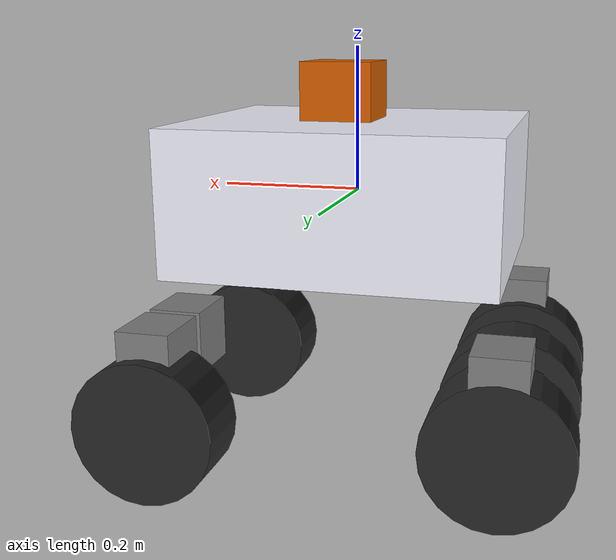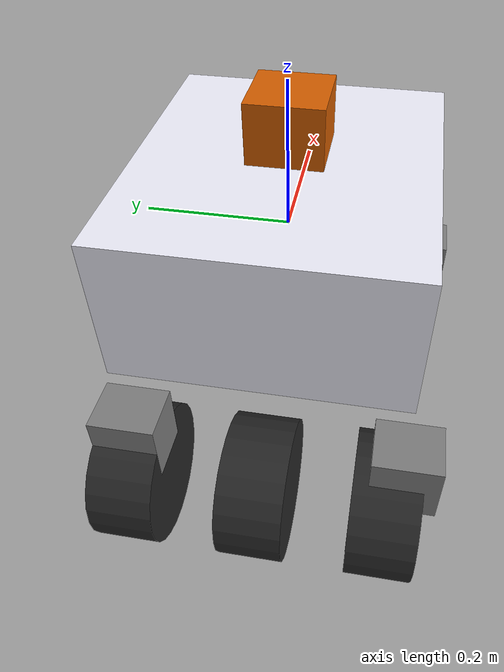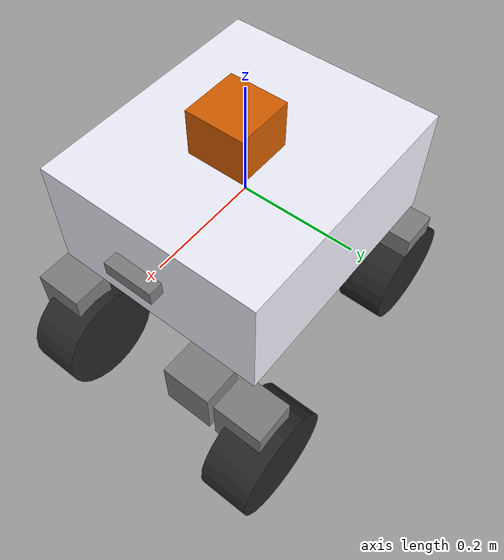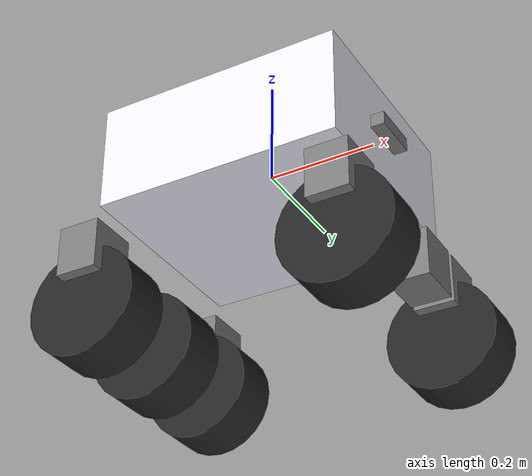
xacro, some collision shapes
<?xml version="1.0"?>
<robot name="pf1" xmlns:xacro="http://ros.org/wiki/xacro">

    <!-- define color-->
  <material name="base_link">
    <color rgba="0.95 0.95 1.0 1.0"/>
  </material>
  <material name="lidar">
    <color rgba="0.0 0.0 0.0 1.0"/>
  </material>
  <material name="camera_aluminum">
    <color rgba="0.5 0.5 0.5 1.0"/>
  </material>
  <material name="frame">
    <color rgba="0.5 0.5 0.5 1.0"/>
  </material>
  <material name="gear">
    <color rgba="0.0 0.4 1.0 1.0"/>
  </material>
  <material name="motor">
    <color rgba="0.3 0.3 0.3 1.0"/>
  </material>
  <material name="wheel">
    <color rgba="0.15 0.15 0.15 1.0"/>
  </material>

    <!-- base_footprint-->

    <!-- base_link -->
  <link name="base_link">
    <inertial>
      <origin xyz="0 0 0" rpy="0 0 0"/>
      <mass value="10.0"/>
      <inertia ixx="1.0" ixy="0.0" ixz="0.0" iyy="1.0" iyz="0.0" izz="1.0"/>
    </inertial>
    <visual>
      <geometry>
        <box size="0.45 0.39 0.2"/>
      </geometry>
      <origin xyz="0 0 0" rpy="0 0 0"/>
      <material name="base_link"/>
    </visual>
    <collision>
      <geometry>
        <box size="0.45 0.39 0.2"/>
      </geometry>
      <origin xyz="0 0 0" rpy="0 0 0"/>
      <material name="base_link"/>
    </collision>
  </link>
  <gazebo reference="body_link">
    <material>Gazebo/White</material>
  </gazebo>

    <!-- imu_link -->
  <joint name="imu_link_to_base_link" type="fixed">
    <parent link="base_link"/>
    <child link="imu_link"/>
    <origin xyz="-0 0 0" rpy="0 0 0"/>
  </joint>
  <link name="imu_link">
    <visual>
      <origin xyz="0 0 0.0" rpy="0 0 0"/>
      <geometry>
        <cylinder length="0.01" radius="0.005"/>
      </geometry>
      <material name="lidar"/>
    </visual>
    <collision>
      <origin xyz="0 0 0.0" rpy="0 0 0"/>
      <geometry>
        <cylinder length="0.01" radius="0.005"/>
      </geometry>
      <material name="lidar"/>
    </collision>
  </link>
  <gazebo reference="imu_link">
    <material>Gazebo/Blue</material>
    <gravity>true</gravity>
    <sensor name="imu_sensor" type="imu">
      <always_on>true</always_on>
      <update_rate>100</update_rate>
      <visualize>true</visualize>
      <topic>data</topic>
      <plugin filename="libgazebo_ros_imu_sensor.so" name="imu_plugin">
        <topicName>imu/data</topicName>
        <bodyName>imu_link</bodyName>
        <updateRateHZ>10.0</updateRateHZ>
        <gaussianNoise>0.0</gaussianNoise>
        <xyzOffset>0 0 0</xyzOffset>
        <rpyOffset>0 0 0</rpyOffset>
        <frameName>imu_link</frameName>
      </plugin>
      <pose>0 0 0 0 0 0</pose>
    </sensor>
  </gazebo>

    <!-- base_sensor -->
  <joint name="base_link_to_base_sensor" type="fixed">
    <parent link="base_link"/>
    <child link="base_sensor"/>
    <origin xyz="-0 0 0" rpy="0 0 0"/>
  </joint>
  <link name="base_sensor">
    <visual>
      <origin xyz="0 0 0.0" rpy="0 0 0"/>
      <geometry>
        <cylinder length="0.01" radius="0.005"/>
      </geometry>
      <material name="lidar"/>
    </visual>
    <collision>
      <origin xyz="0 0 0.0" rpy="0 0 0"/>
      <geometry>
        <cylinder length="0.01" radius="0.005"/>
      </geometry>
      <material name="lidar"/>
    </collision>
  </link>
  <gazebo reference="base_link_to_base_sensor">
    <material>Gazebo/Grey</material>
  </gazebo>

    <!-- realsense -->

  <!-- set property -->
   <xacro:property name="M_PI" value="3.1415926535897931" />
   <xacro:property name="d435_cam_width" value="0.090"/>
   <xacro:property name="d435_cam_height" value="0.025"/>
   <xacro:property name="d435_cam_depth" value="0.02505"/>
   <xacro:property name="d435_cam_mount_from_center_offset" value="0.0149"/>
   <xacro:property name="d435_cam_depth_px" value="${d435_cam_mount_from_center_offset}"/>
   <xacro:property name="d435_cam_depth_py" value="0.0175"/>
   <xacro:property name="d435_cam_depth_pz" value="${d435_cam_height/2}"/>
   <xacro:property name="deg_to_rad" value="0.01745329251994329577" />

  <!-- camera body, with origin at bottom screw mount -->

    <joint name="camera_joint" type="fixed">
      <origin xyz="0.225 0 0" rpy="0 0 0" />
      <parent link="base_sensor" />
      <child link="camera_bottom_screw_frame" />
    </joint>

    <link name="camera_bottom_screw_frame"/>

    <joint name="camera_link_joint" type="fixed">
      <origin xyz="0.0125 0 0" rpy="0 0 0"/>
      <parent link="camera_bottom_screw_frame"/>
      <child link="camera_link" />
    </joint>

    <link name="camera_link">
      <visual>
        <origin xyz="0 ${-d435_cam_depth_py} 0" rpy="${M_PI/2} 0 ${M_PI/2}"/>
        <geometry>
          <box size="${d435_cam_width} ${d435_cam_height} ${d435_cam_depth}" />
        </geometry>
        <material name="camera_aluminum"/>
      </visual>
      <collision>
        <origin xyz="0 ${-d435_cam_depth_py} 0" rpy="0 0 0"/>
        <geometry>
          <box size="${d435_cam_depth} ${d435_cam_width} ${d435_cam_height}"/>
        </geometry>
      </collision>
      <inertial>
        <mass value="0.564" />
        <origin xyz="0 0 0" />
        <inertia ixx="0.003881243" ixy="0.0" ixz="0.0" iyy="0.000498940" iyz="0.0" izz="0.003879257" />
      </inertial>
    </link>
    <gazebo reference="camera_link">
      <material>Gazebo/Black</material>
      <self_collide>0</self_collide>
      <enable_wind>0</enable_wind>
      <kinematic>0</kinematic>
      <gravity>1</gravity>
      <mu2>1</mu2>
      <fdir1>0 0 0</fdir1>
      <kp>1e+13</kp>
      <kd>1</kd>
      <sensor name="cameracolor" type="camera">
        <camera name="camera">
          <horizontal_fov>${69.4*deg_to_rad}</horizontal_fov>
          <image>
            <width>640</width>
            <height>480</height>
            <format>RGB_INT8</format>
          </image>
          <clip>
            <near>0.1</near>
            <far>100</far>
          </clip>
          <noise>
            <type>gaussian</type>
            <mean>0.0</mean>
            <stddev>0.007</stddev>
          </noise>
        </camera>
        <always_on>1</always_on>
        <update_rate>30</update_rate>
        <visualize>1</visualize>
      </sensor>

      <sensor name="cameraired1" type="camera">
        <camera name="camera">
          <horizontal_fov>${85.2*deg_to_rad}</horizontal_fov>
          <image>
            <width>1280</width>
            <height>720</height>
            <format>L_INT8</format>
          </image>
          <clip>
            <near>0.1</near>
            <far>100</far>
          </clip>
          <noise>
            <type>gaussian</type>
            <mean>0.0</mean>
            <stddev>0.05</stddev>
          </noise>
        </camera>
        <always_on>1</always_on>
        <update_rate>90</update_rate>
        <visualize>0</visualize>
      </sensor>

      <sensor name="cameraired2" type="camera">
        <camera name="camera">
          <horizontal_fov>${85.2*deg_to_rad}</horizontal_fov>
          <image>
            <width>1280</width>
            <height>720</height>
            <format>L_INT8</format>
          </image>
          <clip>
            <near>0.1</near>
            <far>100</far>
          </clip>
          <noise>
            <type>gaussian</type>
            <mean>0.0</mean>
            <stddev>0.05</stddev>
          </noise>
        </camera>
        <always_on>1</always_on>
        <update_rate>90</update_rate>
        <visualize>0</visualize>
      </sensor>

      <sensor name="cameradepth" type="depth">
        <camera name="camera">
          <horizontal_fov>${85.2*deg_to_rad}</horizontal_fov>
          <image>
            <width>1280</width>
            <height>720</height>
          </image>
          <clip>
            <near>0.1</near>
            <far>1000</far>
          </clip>
          <noise>
            <type>gaussian</type>
            <mean>0.0</mean>
            <stddev>0.100</stddev>
          </noise>
        </camera>
        <always_on>1</always_on>
        <update_rate>90</update_rate>
        <visualize>0</visualize>
      </sensor>
    </gazebo>

        <!-- camera depth joints and links -->
    <joint name="camera_depth_joint" type="fixed">
      <origin xyz="0 0 0" rpy="0 0 0"/>
      <parent link="camera_link"/>
      <child link="camera_depth_frame" />
    </joint>

    <link name="camera_depth_frame"/>

    <joint name="camera_depth_optical_joint" type="fixed">
      <origin xyz="0 0 0" rpy="${-M_PI/2} 0 ${-M_PI/2}" />
      <parent link="camera_depth_frame" />
      <child link="camera_depth_optical_frame" />
    </joint>

    <link name="camera_depth_optical_frame"/>

    <!-- camera left IR joints and links -->
    <joint name="camera_left_ir_joint" type="fixed">
      <origin xyz="0 0 0" rpy="0 0 0" />
      <parent link="camera_depth_frame" />
      <child link="camera_left_ir_frame" />
    </joint>

    <link name="camera_left_ir_frame"/>

    <joint name="camera_left_ir_optical_joint" type="fixed">
      <origin xyz="0 0 0" rpy="${-M_PI/2} 0 ${-M_PI/2}" />
      <parent link="camera_left_ir_frame" />
      <child link="camera_left_ir_optical_frame" />
    </joint>

    <link name="camera_left_ir_optical_frame"/>

    <!-- camera right IR joints and links -->
    <joint name="camera_right_ir_joint" type="fixed">
      <origin xyz="0 -0.050 0" rpy="0 0 0" />
      <parent link="camera_depth_frame" />
      <child link="camera_right_ir_frame" />
    </joint>

    <link name="camera_right_ir_frame"/>

    <joint name="camera_right_ir_optical_joint" type="fixed">
      <origin xyz="0 0 0" rpy="${-M_PI/2} 0 ${-M_PI/2}" />
      <parent link="camera_right_ir_frame" />
      <child link="camera_right_ir_optical_frame" />
    </joint>

    <link name="camera_right_ir_optical_frame"/>

    <!-- camera color joints and links -->
    <joint name="camera_color_joint" type="fixed">
      <origin xyz="0 0.015 0" rpy="0 0 0" />
      <parent link="camera_depth_frame" />
      <child link="camera_color_frame" />
    </joint>

    <link name="camera_color_frame"/>

    <joint name="camera_color_optical_joint" type="fixed">
      <origin xyz="0 0 0" rpy="${-M_PI/2} 0 ${-M_PI/2}" />
      <parent link="camera_color_frame" />
      <child link="camera_color_optical_frame" />
    </joint>

    <link name="camera_color_optical_frame"/>

      <gazebo>
      <plugin name="camera" filename="librealsense_gazebo_plugin.so">
        <prefix>camera</prefix>
        <depthUpdateRate>30.0</depthUpdateRate>
        <colorUpdateRate>30.0</colorUpdateRate>
        <infraredUpdateRate>30.0</infraredUpdateRate>
        <depthTopicName>depth/image_raw</depthTopicName>
        <depthCameraInfoTopicName>depth/camera_info</depthCameraInfoTopicName>
        <colorTopicName>color/image_raw</colorTopicName>
        <colorCameraInfoTopicName>color/camera_info</colorCameraInfoTopicName>
        <infrared1TopicName>infra1/image_raw</infrared1TopicName>
        <infrared1CameraInfoTopicName>infra1/camera_info</infrared1CameraInfoTopicName>
        <infrared2TopicName>infra2/image_raw</infrared2TopicName>
        <infrared2CameraInfoTopicName>infra2/camera_info</infrared2CameraInfoTopicName>
        <colorOpticalframeName>camera_color_optical_frame</colorOpticalframeName>
        <depthOpticalframeName>camera_depth_optical_frame</depthOpticalframeName>
        <infrared1OpticalframeName>infrared1_optical_frame</infrared1OpticalframeName>
        <infrared2OpticalframeName>infrared2_optical_frame</infrared2OpticalframeName>
        <rangeMinDepth>0.2</rangeMinDepth>
        <rangeMaxDepth>400.0</rangeMaxDepth>
        <pointCloud>true</pointCloud>
        <pointCloudTopicName>depth/color/points</pointCloudTopicName>
        <pointCloudCutoff>0.25</pointCloudCutoff>
        <pointCloudCutoffMax>9.0</pointCloudCutoffMax>
      </plugin>
    </gazebo>

    <!--end of realsense setup-->

     <link name="hokuyo_sensor">
   <collision>
      <origin xyz="0 0 0" rpy="0 0 0"/>
      <geometry>
        <box size="0.1 0.1 0.1"/>
      </geometry>
    </collision>

    <visual>
      <origin xyz="0 0 0" rpy="0 0 0"/>
      <geometry>
        <mesh filename="package://rrbot_description/meshes/hokuyo.dae"/>
      </geometry>
    </visual>

    <inertial>
      <mass value="1e-5" />
      <origin xyz="0 0 0" rpy="0 0 0"/>
      <inertia ixx="1e-6" ixy="0" ixz="0" iyy="1e-6" iyz="0" izz="1e-6" />
    </inertial>
    </link>

    <joint name="hokuyo_joint" type="fixed">
      <parent link="base_link"/>
      <child  link="hokuyo_sensor"/>
      <origin xyz="0.02 0 0.13" rpy="0 0 0"/>
    </joint>

    <gazebo reference="hokuyo_sensor">
      <sensor type="ray" name="base_link_hokuyo_sensor">
        <pose>0 0 0 0 0 0</pose>

        <visualize>false</visualize>
        <update_rate>40</update_rate>
        <ray>
          <scan>
          <horizontal>
                <samples>400</samples>
                <resolution>1</resolution>

                <min_angle>${radians(-180)}</min_angle>
                <max_angle>${radians( 180)}</max_angle>

          </horizontal>

          </scan>
          <range>
            <min>0.10</min>
            <max>30.0</max>
            <resolution>0.01</resolution>
          </range>
          <noise>
            <type>gaussian</type>

            <stddev>0.01</stddev>
          </noise>
        </ray>
        <plugin name="gazebo_ros_lidar_controller" filename="libgazebo_ros_laser.so">
          <topicName>scan</topicName>
          <frameName>hokuyo_sensor</frameName>
        </plugin>
      </sensor>
    </gazebo>

    <!-- leg_fl -->

  <joint name="frame3_fl_to_gear_fl" type="revolute">
    <parent link="base_link"/>
    <child  link="frame3_fl"/>
    <axis xyz="0 0 1"/>
    <origin xyz="0.23 0.195 -0.205" rpy="0 0 0"/>
    <limit lower="-3.1415" upper="3.1415" effort="30" velocity="10"/>
    <dybamics damping="10000.0" friction="10000.0" />
  </joint>
  <transmission name="frame3_fl_to_gear_fl_trans">
    <type>transmission_interface/SimpleTransmission</type>
    <joint name="frame3_fl_to_gear_fl">
        <hardwareInterface>hardware_interface/PositionJointInterface</hardwareInterface>
    </joint>
    <actuator name="frame3_fl_to_gear_fl_motor">
      <hardwareInterface>hardware_interface/PositionJointInterface</hardwareInterface>
      <mechanicalReduction>1</mechanicalReduction>
    </actuator>
  </transmission>

  <link name="frame3_fl">
    <visual>
      <geometry>
        <box size="0.075 0.09 0.09"/>
      </geometry>
      <origin xyz="0 0 0" rpy="0 0 0"/>
      <material name="frame"/>
    </visual>
    <collision>
      <geometry>
        <box size="0.075 0.09 0.09"/>
      </geometry>
      <origin xyz="0 0 0" rpy="0 0 0"/>
      <material name="frame"/>
    </collision>
    <inertial>
      <origin xyz="0 0 0" rpy="0 0 0"/>
      <mass value="1.0"/>
      <inertia ixx="1.0" ixy="0.0" ixz="0.0" iyy="1.0" iyz="0.0" izz="1.0"/>
    </inertial>
  </link>
  <gazebo reference="frame3_fl">
    <material>Gazebo/Grey</material>
    <mu1 value="2500" />
    <mu2 value="2500" />
  </gazebo>

  <joint name="wheel_fl_to_motor_fl" type="continuous">
    <parent link="frame3_fl"/>
    <child  link="wheel_fl"/>
    <origin xyz="0 0.02 -0.09" rpy="0 0 0"/>
    <axis xyz="0 1 0"/>
    <limit effort="100" velocity="100"/>
    <dynamics damping="0.1" friction="0.0"/>
  </joint>
  <transmission name="wheel_fl_trans">
    <type>transmission_interface/SimpleTransmission</type>
    <joint name="wheel_fl_to_motor_fl">
        <hardwareInterface>hardware_interface/VelocityJointInterface</hardwareInterface>
    </joint>
    <actuator name="wheel_fl_motor">
      <hardwareInterface>hardware_interface/VelocityJointInterface</hardwareInterface>
      <mechanicalReduction>1</mechanicalReduction>
    </actuator>
  </transmission>

  <link name="wheel_fl">
    <visual>
      <geometry>
        <cylinder length="0.09" radius="0.1"/>
      </geometry>
      <origin xyz="0 0 0" rpy="1.57 0 0"/>
      <material name="wheel"/>
    </visual>
    <collision>
      <geometry>
        <cylinder length="0.09" radius="0.1"/>
      </geometry>
      <origin xyz="0 0 0" rpy="1.57 0 0"/>
      <material name="wheel"/>
    </collision>
    <inertial>
      <origin xyz="0 0 0" rpy="0 0 0"/>
      <mass value="1.0"/>
      <inertia ixx="1.0" ixy="0.0" ixz="0.0" iyy="1.0" iyz="0.0" izz="1.0"/>
    </inertial>
  </link>
  <gazebo reference="wheel_fl">
    <material>Gazebo/Black</material>
    <mu1 value="2.0" />
    <mu2 value="1.0" />
    <kp value="1e9" />
    <kd value="1e9" />
  </gazebo>

   <!-- virtual steer -->
  <joint name="front_steer_joint" type="revolute">
    <parent link="base_link"/>
    <child link="front_steer_link"/>
    <axis xyz="0 0 1"/>
    <origin xyz="0.23 0.093 -0.205" rpy="0 0 0"/>
    <limit lower="-3.1415" upper="3.1415" effort="30" velocity="10"/>
    <dybamics damping="10000.0" friction="10000.0" />
  </joint>
  <transmission name="front_steer_trans">
    <type>transmission_interface/SimpleTransmission</type>
    <joint name="front_steer_joint">
        <hardwareInterface>hardware_interface/PositionJointInterface</hardwareInterface>
    </joint>
    <actuator name="front_steer_joint_motor">
      <hardwareInterface>hardware_interface/PositionJointInterface</hardwareInterface>
      <hardwareInterface>EffortJointInterface</hardwareInterface>
      <mechanismReduction>1</mechanismReduction>
    </actuator>
  </transmission>
  <link name="front_steer_link">
    <visual>
      <geometry>
        <box size="0.075 0.09 0.09"/>
      </geometry>
      <origin xyz="0 0 0" rpy="0 0 0"/>
      <material name="frame"/>
    </visual>
    <collision>
      <geometry>
        <box size="0.075 0.09 0.09"/>
      </geometry>
      <origin xyz="0 0 0" rpy="0 0 0"/>
      <material name="frame"/>
    </collision>
    <inertial>
      <origin xyz="0 0 0" rpy="0 0 0"/>
      <mass value="1.0"/>
      <inertia ixx="1.0" ixy="0.0" ixz="0.0" iyy="1.0" iyz="0.0" izz="1.0"/>
    </inertial>
  </link>

    <gazebo reference="front_steer_joint">
      <provideFeedback>true</provideFeedback>
    </gazebo>

      <!-- leg_bl : mirror leg_fl to the y axis -->

  <joint name="frame3_bl_to_gear_bl" type="fixed">
    <parent link="base_link"/>
    <child  link="frame3_bl"/>
    <axis xyz="0 0 1"/>
    <origin xyz="-0.23 0.175 -0.205" rpy="0 0 0"/>
  </joint>

  <link name="frame3_bl">
    <visual>
      <geometry>
        <box size="0.075 0.09 0.09"/>
      </geometry>
      <origin xyz="0 0 0" rpy="0 0 0"/>
      <material name="frame"/>
    </visual>
    <collision>
      <geometry>
        <box size="0.075 0.09 0.09"/>
      </geometry>
      <origin xyz="0 0 0" rpy="0 0 0"/>
      <material name="frame"/>
    </collision>
    <inertial>
      <origin xyz="0 0 0" rpy="0 0 0"/>
      <mass value="1.0"/>
      <inertia ixx="1.0" ixy="0.0" ixz="0.0" iyy="1.0" iyz="0.0" izz="1.0"/>
    </inertial>
  </link>
  <gazebo reference="frame3_bl">
    <material>Gazebo/Grey</material>
    <mu1 value="2500" />
    <mu2 value="2500" />
  </gazebo>

  <joint name="wheel_bl_to_motor_bl" type="continuous">
    <parent link="base_link"/>
    <child  link="wheel_bl"/>
    <origin xyz="-0.23 0.175 -0.295" rpy="0 0 0"/>
    <axis xyz="0 1 0"/>
    <limit effort="100" velocity="100"/>
    <dynamics damping="0.1" friction="0.0"/>
  </joint>
  <transmission name="wheel_bl_trans">
    <type>transmission_interface/SimpleTransmission</type>
    <joint name="wheel_bl_to_motor_bl">
        <hardwareInterface>hardware_interface/VelocityJointInterface</hardwareInterface>
    </joint>
    <actuator name="wheel_bl_motor">
      <hardwareInterface>hardware_interface/VelocityJointInterface</hardwareInterface>
      <hardwareInterface>EffortJointInterface</hardwareInterface>
      <mechanismReduction>1</mechanismReduction>
    </actuator>
  </transmission>

  <link name="wheel_bl">
    <visual>
      <geometry>
        <cylinder length="0.09" radius="0.1"/>
      </geometry>
      <origin xyz="0 0 0" rpy="1.57 0 0"/>
      <material name="wheel"/>
    </visual>
    <collision>
      <geometry>
        <cylinder length="0.09" radius="0.1"/>
      </geometry>
      <origin xyz="0 0 0" rpy="1.57 0 0"/>
      <material name="wheel"/>
    </collision>
    <inertial>
      <origin xyz="0 0 0" rpy="0 0 0"/>
      <mass value="1.0"/>
      <inertia ixx="1.0" ixy="0.0" ixz="0.0" iyy="1.0" iyz="0.0" izz="1.0"/>
    </inertial>
  </link>
  <gazebo reference="wheel_bl">
    <material>Gazebo/Black</material>
    <mu1 value="1.0" />
    <mu2 value="1.0" />
    <kp value="1e9" />
    <kd value="1e9" />
  </gazebo>

    <!-- leg_fr -->

  <joint name="frame3_fr_to_gear_fr" type="revolute">
    <parent link="base_link"/>
    <child  link="frame3_fr"/>
    <axis xyz="0 0 1"/>
    <origin xyz="0.23 -0.195 -0.205" rpy="0 0 0"/>
    <limit lower="-3.1415" upper="3.1415" effort="30" velocity="10"/>
    <dybamics damping="10000.0" friction="10000.0" />
  </joint>
  <transmission name="frame3_fr_to_gear_fr_trans">
    <type>transmission_interface/SimpleTransmission</type>
    <joint name="frame3_fr_to_gear_fr">
        <hardwareInterface>hardware_interface/PositionJointInterface</hardwareInterface>
    </joint>
    <actuator name="frame3_fr_to_gear_fr_motor">
      <hardwareInterface>hardware_interface/PositionJointInterface</hardwareInterface>
      <mechanismReduction>1</mechanismReduction>
    </actuator>
  </transmission>

  <link name="frame3_fr">
    <visual>
      <geometry>
        <box size="0.075 0.09 0.09"/>
      </geometry>
      <origin xyz="0 0 0" rpy="0 0 0"/>
      <material name="frame"/>
    </visual>
    <collision>
      <geometry>
        <box size="0.075 0.09 0.09"/>
      </geometry>
      <origin xyz="0 0 0" rpy="0 0 0"/>
      <material name="frame"/>
    </collision>
    <inertial>
      <origin xyz="0 0 0" rpy="0 0 0"/>
      <mass value="1.0"/>
      <inertia ixx="1.0" ixy="0.0" ixz="0.0" iyy="1.0" iyz="0.0" izz="1.0"/>
    </inertial>
  </link>
  <gazebo reference="frame3_fr">
    <material>Gazebo/Grey</material>
    <mu1 value="2500" />
    <mu2 value="2500" />
  </gazebo>

  <joint name="wheel_fr_to_motor_fr" type="continuous">
    <parent link="frame3_fr"/>
    <child  link="wheel_fr"/>
    <origin xyz="0 0.02 -0.09" rpy="0 0 0"/>
    <axis xyz="0 1 0"/>
    <limit effort="100" velocity="100"/>
    <dynamics damping="0.1" friction="0.0"/>
  </joint>
  <transmission name="wheel_fr_trans">
    <type>transmission_interface/SimpleTransmission</type>
    <joint name="wheel_fr_to_motor_fr">
        <hardwareInterface>hardware_interface/VelocityJointInterface</hardwareInterface>
    </joint>
    <actuator name="wheel_fr_motor">
      <hardwareInterface>hardware_interface/VelocityJointInterface</hardwareInterface>
      <hardwareInterface>EffortJointInterface</hardwareInterface>
      <mechanismReduction>1</mechanismReduction>
    </actuator>
  </transmission>

  <link name="wheel_fr">
    <visual>
      <geometry>
        <cylinder length="0.09" radius="0.1"/>
      </geometry>
      <origin xyz="0 0 0" rpy="1.57 0 0"/>
      <material name="wheel"/>
    </visual>
    <collision>
      <geometry>
        <cylinder length="0.09" radius="0.1"/>
      </geometry>
      <origin xyz="0 0 0" rpy="1.57 0 0"/>
      <material name="wheel"/>
    </collision>
    <inertial>
      <origin xyz="0 0 0" rpy="0 0 0"/>
      <mass value="1.0"/>
      <inertia ixx="1.0" ixy="0.0" ixz="0.0" iyy="1.0" iyz="0.0" izz="1.0"/>
    </inertial>
  </link>
  <gazebo reference="wheel_fr">
    <material>Gazebo/Black</material>
    <mu1 value="1.0" />
    <mu2 value="1.0" />
    <kp value="1e9" />
    <kd value="1e9" />
  </gazebo>

    <!-- leg_br -->

  <joint name="frame3_br_to_gear_br" type="fixed">
    <parent link="base_link"/>
    <child  link="frame3_br"/>
    <axis xyz="0 0 1"/>
    <origin xyz="-0.23 -0.195 -0.205" rpy="0 0 0"/>
  </joint>

  <link name="frame3_br">
    <visual>
      <geometry>
        <box size="0.075 0.09 0.09"/>
      </geometry>
      <origin xyz="0 0 0" rpy="0 0 0"/>
      <material name="frame"/>
    </visual>
    <collision>
      <geometry>
        <box size="0.075 0.09 0.09"/>
      </geometry>
      <origin xyz="0 0 0" rpy="0 0 0"/>
      <material name="frame"/>
    </collision>
    <inertial>
      <origin xyz="0 0 0" rpy="0 0 0"/>
      <mass value="1.0"/>
      <inertia ixx="1.0" ixy="0.0" ixz="0.0" iyy="1.0" iyz="0.0" izz="1.0"/>
    </inertial>
  </link>
  <gazebo reference="frame3_br">
    <material>Gazebo/Green</material>
    <mu1 value="2500" />
    <mu2 value="2500" />
  </gazebo>

  <joint name="wheel_br_to_motor_br" type="continuous">
    <parent link="base_link"/>
    <child  link="wheel_br"/>
    <origin xyz="-0.23 -0.175 -0.295" rpy="0 0 0"/>
    <axis xyz="0 1 0"/>
    <limit effort="100" velocity="100"/>
    <dynamics damping="0.1" friction="0.0"/>
  </joint>
  <transmission name="wheel_br_trans">
    <type>transmission_interface/SimpleTransmission</type>
    <joint name="wheel_br_to_motor_br">
        <hardwareInterface>hardware_interface/VelocityJointInterface</hardwareInterface>
    </joint>
    <actuator name="wheel_br_motor">
      <hardwareInterface>hardware_interface/VelocityJointInterface</hardwareInterface>
      <hardwareInterface>EffortJointInterface</hardwareInterface>
      <mechanismReduction>1</mechanismReduction>
    </actuator>
  </transmission>

  <link name="wheel_br">
    <visual>
      <geometry>
        <cylinder length="0.09" radius="0.1"/>
      </geometry>
      <origin xyz="0 0 0" rpy="1.57 0 0"/>
      <material name="wheel"/>
    </visual>
    <collision>
      <geometry>
        <cylinder length="0.09" radius="0.1"/>
      </geometry>
      <origin xyz="0 0 0" rpy="1.57 0 0"/>
      <material name="wheel"/>
    </collision>
    <inertial>
      <origin xyz="0 0 0" rpy="0 0 0"/>
      <mass value="1.0"/>
      <inertia ixx="1.0" ixy="0.0" ixz="0.0" iyy="1.0" iyz="0.0" izz="1.0"/>
    </inertial>
  </link>
  <gazebo reference="wheel_br">
    <material>Gazebo/Black</material>
    <mu1 value="1.0" />
    <mu2 value="1.0" />
    <kp value="1e9" />
    <kd value="1e9" />
  </gazebo>

 <!-- virtual wheel -->
  <joint name="rear_wheel_joint" type="continuous">
    <parent link="base_link"/>
    <child  link="rear_wheel_link"/>
    <origin xyz="-0.23 0.0 -0.295" rpy="0 0 0"/>
    <axis xyz="0 1 0"/>
    <limit effort="100" velocity="100"/>
    <dynamics damping="0.1" friction="0.0"/>
  </joint>
  <transmission name="rear_wheel_trans">
    <type>transmission_interface/SimpleTransmission</type>
    <joint name="rear_wheel_joint">
        <hardwareInterface>hardware_interface/VelocityJointInterface</hardwareInterface>
    </joint>
    <actuator name="rear_wheel_joint_motor">
      <hardwareInterface>hardware_interface/VelocityJointInterface</hardwareInterface>
      <hardwareInterface>EffortJointInterface</hardwareInterface>
      <mechanismReduction>1</mechanismReduction>
    </actuator>
  </transmission>
  <link name="rear_wheel_link">
  <visual>
      <geometry>
        <cylinder length="0.09" radius="0.1"/>
      </geometry>
      <origin xyz="0 0 0" rpy="1.57 0 0"/>
      <material name="wheel"/>
    </visual>
    <collision>
      <geometry>
        <cylinder length="0.09" radius="0.1"/>
      </geometry>
      <origin xyz="0 0 0" rpy="1.57 0 0"/>
      <material name="wheel"/>
    </collision>
    <inertial>
      <origin xyz="0 0 0" rpy="0 0 0"/>
      <mass value="1.0"/>
      <inertia ixx="1.0" ixy="0.0" ixz="0.0" iyy="1.0" iyz="0.0" izz="1.0"/>
    </inertial>
  </link>

  <gazebo>
    <plugin name="gazebo_ros_control" filename="libgazebo_ros_control.so">
    <robotSimType>steer_bot_hardware_gazebo/SteerBotHardwareGazebo</robotSimType>
    <legacyModeNS>false</legacyModeNS>
    </plugin>
  </gazebo>

</robot>
